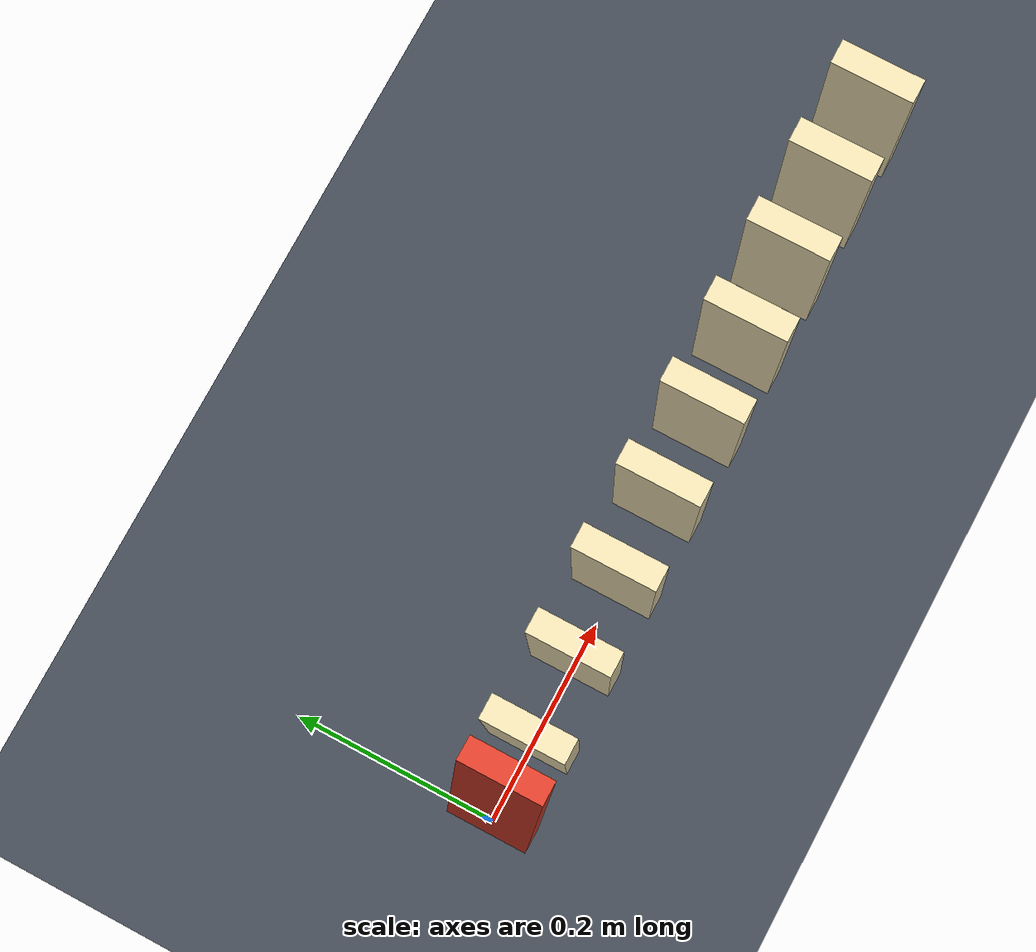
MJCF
<mujoco model="ten_domino_chain">
  <compiler angle="degree"/>
  <option timestep="0.002" gravity="0 0 -9.81" integrator="implicitfast" solver="Newton" iterations="100" cone="elliptic"/>

  <visual>
    <headlight ambient="0.35 0.35 0.35" diffuse="0.65 0.65 0.65" specular="0.15 0.15 0.15"/>
  </visual>

  <worldbody>
    <light name="overhead" pos="0.4 -0.5 2" dir="0 0 -1" diffuse="0.8 0.8 0.8"/>
    <geom name="floor" type="plane" pos="0 0 0" size="3 2 0.1" friction="0.9 0.005 0.0001" solref="0.008 1" solimp="0.95 0.99 0.001" rgba="0.25 0.28 0.32 1"/>

    <!-- The first domino starts tilted 12 degrees toward the row.
         Its lower forward edge is on the floor. -->
    <body name="domino1" pos="0.021053398 0 0.100309700" quat="0.994521895 0 0.104528463 0">
      <freejoint name="domino1_free"/>
      <geom name="domino1_box" type="box" size="0.012 0.04 0.10" density="650" friction="0.8 0.005 0.0001" solref="0.008 1" solimp="0.95 0.99 0.001" rgba="0.85 0.24 0.16 1"/>
    </body>

    <body name="domino2" pos="0.08 0 0.10">
      <freejoint name="domino2_free"/>
      <geom name="domino2_box" type="box" size="0.012 0.04 0.10" density="650" friction="0.8 0.005 0.0001" solref="0.008 1" solimp="0.95 0.99 0.001" rgba="0.92 0.86 0.68 1"/>
    </body>

    <body name="domino3" pos="0.16 0 0.10">
      <freejoint name="domino3_free"/>
      <geom name="domino3_box" type="box" size="0.012 0.04 0.10" density="650" friction="0.8 0.005 0.0001" solref="0.008 1" solimp="0.95 0.99 0.001" rgba="0.92 0.86 0.68 1"/>
    </body>

    <body name="domino4" pos="0.24 0 0.10">
      <freejoint name="domino4_free"/>
      <geom name="domino4_box" type="box" size="0.012 0.04 0.10" density="650" friction="0.8 0.005 0.0001" solref="0.008 1" solimp="0.95 0.99 0.001" rgba="0.92 0.86 0.68 1"/>
    </body>

    <body name="domino5" pos="0.32 0 0.10">
      <freejoint name="domino5_free"/>
      <geom name="domino5_box" type="box" size="0.012 0.04 0.10" density="650" friction="0.8 0.005 0.0001" solref="0.008 1" solimp="0.95 0.99 0.001" rgba="0.92 0.86 0.68 1"/>
    </body>

    <body name="domino6" pos="0.40 0 0.10">
      <freejoint name="domino6_free"/>
      <geom name="domino6_box" type="box" size="0.012 0.04 0.10" density="650" friction="0.8 0.005 0.0001" solref="0.008 1" solimp="0.95 0.99 0.001" rgba="0.92 0.86 0.68 1"/>
    </body>

    <body name="domino7" pos="0.48 0 0.10">
      <freejoint name="domino7_free"/>
      <geom name="domino7_box" type="box" size="0.012 0.04 0.10" density="650" friction="0.8 0.005 0.0001" solref="0.008 1" solimp="0.95 0.99 0.001" rgba="0.92 0.86 0.68 1"/>
    </body>

    <body name="domino8" pos="0.56 0 0.10">
      <freejoint name="domino8_free"/>
      <geom name="domino8_box" type="box" size="0.012 0.04 0.10" density="650" friction="0.8 0.005 0.0001" solref="0.008 1" solimp="0.95 0.99 0.001" rgba="0.92 0.86 0.68 1"/>
    </body>

    <body name="domino9" pos="0.64 0 0.10">
      <freejoint name="domino9_free"/>
      <geom name="domino9_box" type="box" size="0.012 0.04 0.10" density="650" friction="0.8 0.005 0.0001" solref="0.008 1" solimp="0.95 0.99 0.001" rgba="0.92 0.86 0.68 1"/>
    </body>

    <body name="domino10" pos="0.72 0 0.10">
      <freejoint name="domino10_free"/>
      <geom name="domino10_box" type="box" size="0.012 0.04 0.10" density="650" friction="0.8 0.005 0.0001" solref="0.008 1" solimp="0.95 0.99 0.001" rgba="0.92 0.86 0.68 1"/>
    </body>
  </worldbody>

  <!-- Only domino1 has initial velocity: rotation toward +x about its
       lower forward edge. All other dominoes start at rest. -->
  <keyframe>
    <key name="start" qvel="0.2006194 0 -0.0181068 0 2 0   0 0 0 0 0 0   0 0 0 0 0 0   0 0 0 0 0 0   0 0 0 0 0 0   0 0 0 0 0 0   0 0 0 0 0 0   0 0 0 0 0 0   0 0 0 0 0 0   0 0 0 0 0 0"/>
  </keyframe>
</mujoco>
